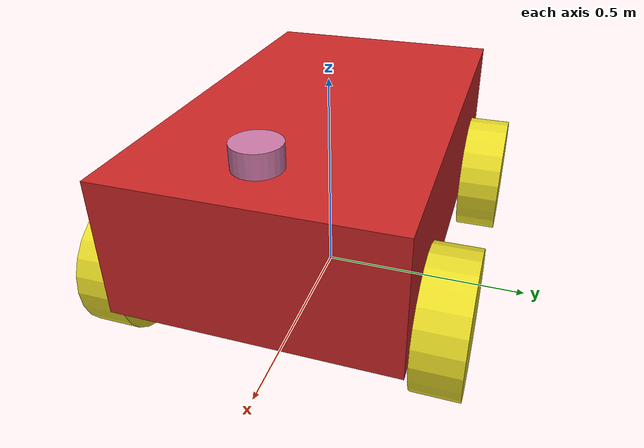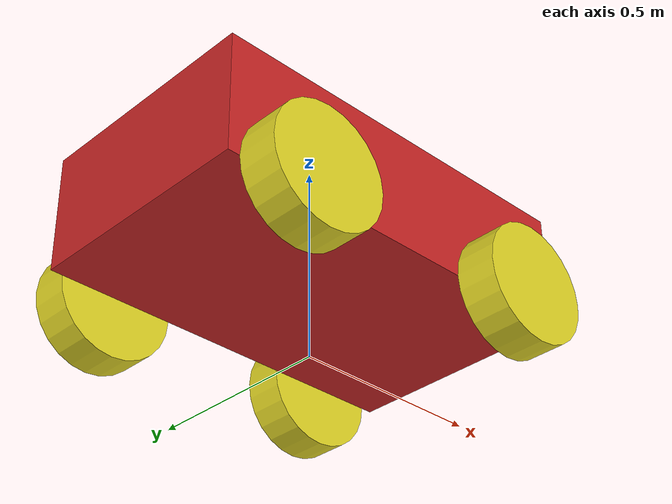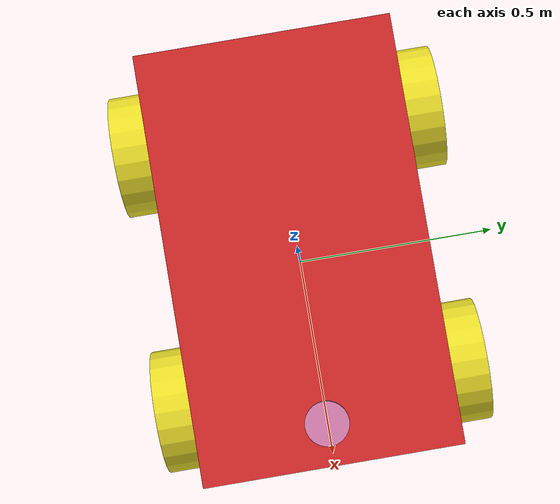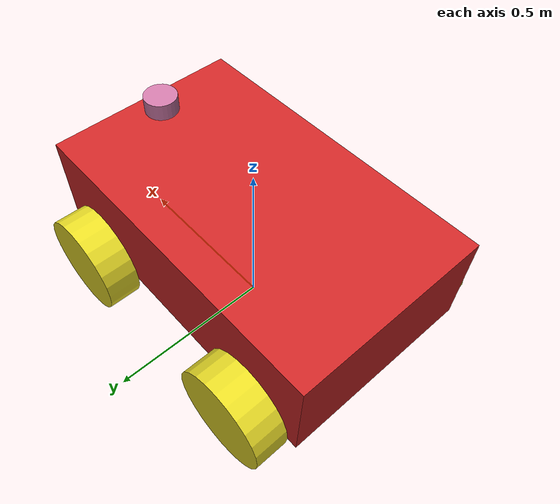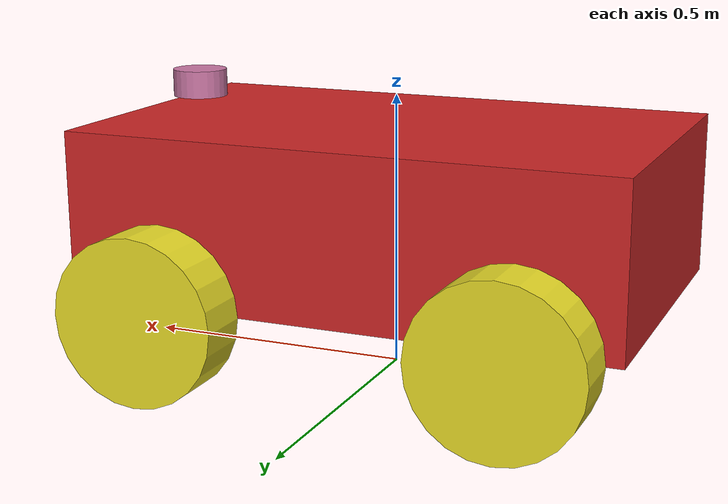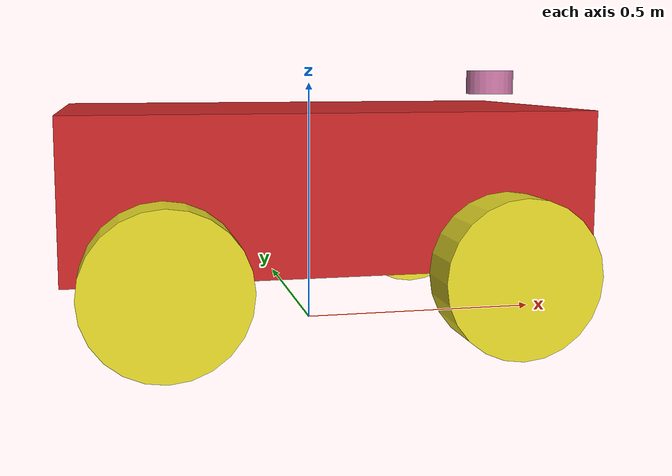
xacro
<?xml version="1.0"?>
<robot name="differential_drive_robot" xmlns:xacro="http://www.ros.org/wiki/xacro">

<!--Body dimensions-->
<xacro:property name="body_link_x_dim" value="1"/>
<xacro:property name="body_link_y_dim" value="0.6"/>
<xacro:property name="body_link_z_dim" value="0.3"/>
<!--Wheel dimensions-->
<xacro:property name="wheel_link_radius" value="0.15"/>
<xacro:property name="wheel_link_length" value="0.1"/>
<xacro:property name="wheel_link_z_location" value="${-body_link_z_dim/2}"/>

<!--Material Density-->
<xacro:property name="body_density" value="2710.0"/>
<xacro:property name="wheel_density" value="2710.0"/>

<!--Pi constant-->
<xacro:property name="pi_const" value="3.14159265"/>

<!--Robot body and wheel mass-->
<xacro:property name="body_mass" value="${body_density * body_link_x_dim * body_link_y_dim * body_link_z_dim}"/>
<xacro:property name="wheel_mass" value="${wheel_density * pi_const * wheel_link_radius * wheel_link_radius * wheel_link_length}"/>

<!--Moment of inertia of the wheel-->
<xacro:property name="Iz_wheel" value="${(1/2) * wheel_mass * wheel_link_radius * wheel_link_radius}"/>
<xacro:property name="I_wheel" value="${(1.0/12.0) * wheel_mass * (3.0 * wheel_link_radius * wheel_link_radius + wheel_link_length * wheel_link_length)}"/>

<!--Macro-->
<xacro:macro name="inertia_wheel">
  <inertial>
    <origin rpy="0 0 0" xyz="0 0 0"/>
    <mass value="${wheel_mass}"/>
    <inertia ixx="${I_wheel}" ixy="0.0" ixz="0.0" iyy="${I_wheel}" iyz="0.0" izz="${Iz_wheel}"/>
  </inertial>
</xacro:macro>

<!--Extra Gazebo Options and motion control driver-->
<xacro:include filename="$(find mobile_robot)/model/robot.gazebo"/>
<!--Links and joints-->
<link name="dummy">
</link>
<joint name="dummy_joint" type="fixed">
  <parent link="dummy"/>
  <child link="body_link"/>
    <origin xyz="0 0 ${body_link_z_dim/2 + wheel_link_radius}" rpy="0 0 0"/>
</joint>

<!--Body link-->
<link name="body_link">
    <visual>
        <geometry>
        <box size="${body_link_x_dim} ${body_link_y_dim} ${body_link_z_dim}"/>
        </geometry>
    <origin rpy="0 0 0" xyz="0 0 0"/>
    </visual>

    <collision>
        <geometry>
        <box size="${body_link_x_dim} ${body_link_y_dim} ${body_link_z_dim}"/>
        </geometry>
        <origin rpy="0 0 0" xyz="0 0 0"/>
    </collision>

    <inertial>
        <origin rpy="0 0 0" xyz="0 0 0"/>
        <mass value="${body_mass}"/>
        <inertia ixx="${(1.0/12.0) * body_mass * (body_link_y_dim * body_link_y_dim + body_link_z_dim * body_link_z_dim)}" ixy="0.0" ixz="0.0" iyy="${(1.0/12.0) * body_mass * (body_link_x_dim * body_link_x_dim + body_link_z_dim * body_link_z_dim)}" iyz="0.0" izz="${(1.0/12.0) * body_mass * (body_link_x_dim * body_link_x_dim + body_link_y_dim * body_link_y_dim)}"/>
    </inertial>
</link>
<!--Back Right Wheel-->
<joint name="wheel1_joint" type="continuous">
    <parent link="body_link"/>
    <child link="wheel1_link"/>
    <origin xyz="${-body_link_x_dim/2+1.2*wheel_link_radius} ${-body_link_y_dim/2-wheel_link_length/2} ${wheel_link_z_location}" rpy="0 0 0"/>
    <axis xyz="0 1 0"/>
    <limit effort="1000" velocity="1000"/>
    <dynamics damping="1.0" friction="1.0"/>
</joint>
<link name="wheel1_link">
    <visual>
        <origin rpy="1.570795 0 0" xyz="0 0 0"/>
        <geometry>
            <cylinder length="${wheel_link_length}" radius="${wheel_link_radius}"/>
        </geometry>
    </visual>
    <collision>
        <origin rpy="1.570795 0 0" xyz="0 0 0"/>
        <geometry>
            <cylinder length="${wheel_link_length}" radius="${wheel_link_radius}"/>
        </geometry>
    </collision>
    <xacro:inertia_wheel/>
</link>

<!--Back Left Wheel-->
<joint name="wheel2_joint" type="continuous">
    <parent link="body_link"/>
    <child link="wheel2_link"/>
    <origin xyz="${-body_link_x_dim/2+1.2*wheel_link_radius} ${body_link_y_dim/2+wheel_link_length/2} ${wheel_link_z_location}" rpy="0 0 0"/>
    <axis xyz="0 1 0"/>
    <limit effort="1000" velocity="1000"/>
    <dynamics damping="1.0" friction="1.0"/>
</joint>
<link name="wheel2_link">
    <visual>
        <origin rpy="1.570795 0 0" xyz="0 0 0"/>
        <geometry>
            <cylinder length="${wheel_link_length}" radius="${wheel_link_radius}"/>
        </geometry>
    </visual>
    <collision>
        <origin rpy="1.570795 0 0" xyz="0 0 0"/>
        <geometry>
            <cylinder length="${wheel_link_length}" radius="${wheel_link_radius}"/>
        </geometry>
    </collision>
    <xacro:inertia_wheel/>
</link>

<!--Front Right Wheel-->
<joint name="wheel3_joint" type="continuous">
    <parent link="body_link"/>
    <child link="wheel3_link"/>
    <origin xyz="${body_link_x_dim/2-1.2*wheel_link_radius} ${-body_link_y_dim/2-wheel_link_length/2} ${wheel_link_z_location}" rpy="0 0 0"/>
    <axis xyz="0 1 0"/>
    <limit effort="1000" velocity="1000"/>
    <dynamics damping="1.0" friction="1.0"/>
</joint>
<link name="wheel3_link">
    <visual>
        <origin rpy="1.570795 0 0" xyz="0 0 0"/>
        <geometry>
            <cylinder length="${wheel_link_length}" radius="${wheel_link_radius}"/>
        </geometry>
    </visual>
    <collision>
        <origin rpy="1.570795 0 0" xyz="0 0 0"/>
        <geometry>
            <cylinder length="${wheel_link_length}" radius="${wheel_link_radius}"/>
        </geometry>
    </collision>
    <xacro:inertia_wheel/>
</link>

<!--Front Left Wheel-->
<joint name="wheel4_joint" type="continuous">
    <parent link="body_link"/>
    <child link="wheel4_link"/>
    <origin xyz="${body_link_x_dim/2-1.2*wheel_link_radius} ${body_link_y_dim/2+wheel_link_length/2} ${wheel_link_z_location}" rpy="0 0 0"/>
    <axis xyz="0 1 0"/>
    <limit effort="1000" velocity="1000"/>
    <dynamics damping="1.0" friction="1.0"/>
</joint>
<link name="wheel4_link">
    <visual>
        <origin rpy="1.570795 0 0" xyz="0 0 0"/>
        <geometry>
            <cylinder length="${wheel_link_length}" radius="${wheel_link_radius}"/>
        </geometry>
    </visual>
    <collision>
        <origin rpy="1.570795 0 0" xyz="0 0 0"/>
        <geometry>
            <cylinder length="${wheel_link_length}" radius="${wheel_link_radius}"/>
        </geometry>
    </collision>
    <xacro:inertia_wheel/>
</link>
<!-- I also just created this lidar to test the wall follower -->
<link name="lidar_link">
  <visual>
    <geometry>
      <cylinder radius="0.05" length="0.05"/>
    </geometry>
  </visual>
  <collision>
    <geometry>
      <cylinder radius="0.05" length="0.05"/>
    </geometry>
  </collision>
</link>

<joint name="lidar_joint" type="fixed">
  <parent link="body_link"/>
  <child link="lidar_link"/>
  <origin xyz="0.4 0 0.2" rpy="0 0 0"/>
  </joint>
</robot>
